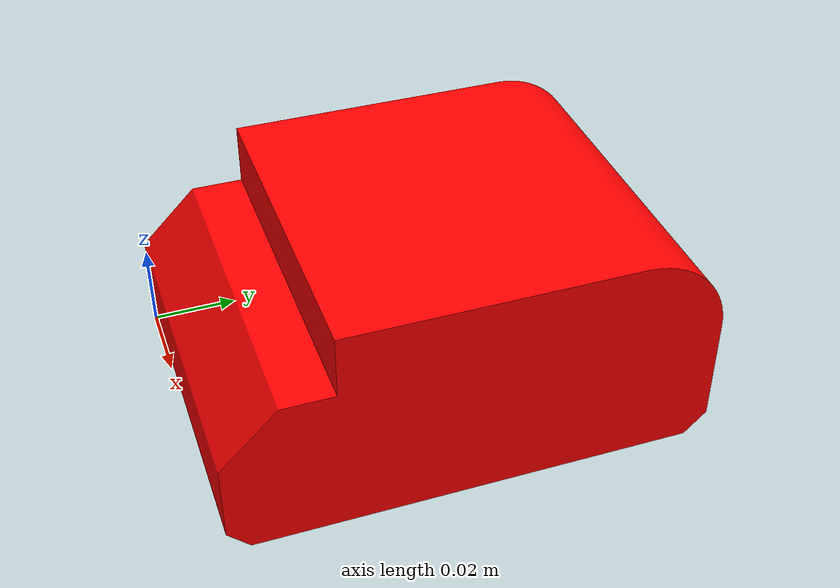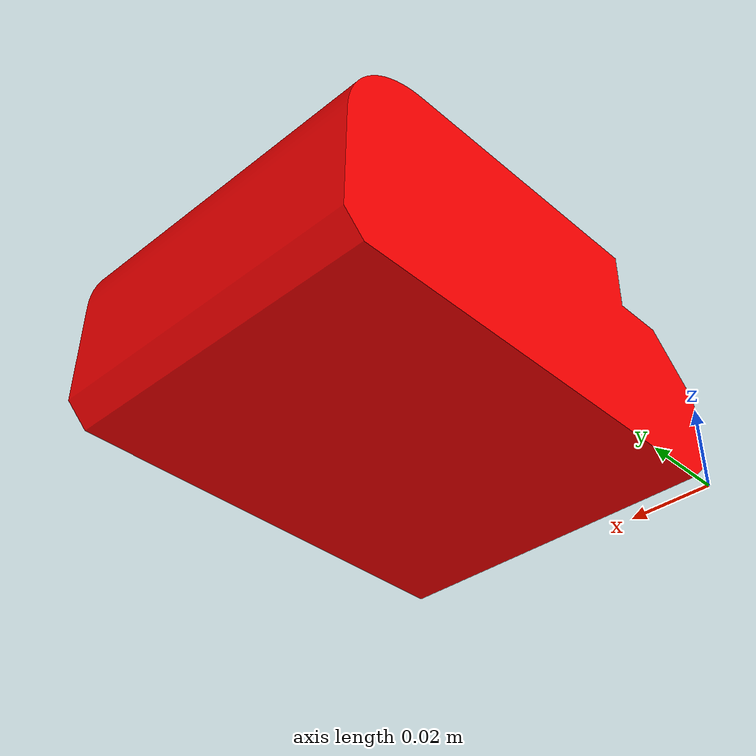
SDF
<?xml version="1.0" ?>
<sdf version="1.8">
  <model name="battery">
    <static>true</static>
    <pose>0 0 0 0 0 0</pose>

    <link name="battery">

      <!-- VISUAL -->
      <visual name="battery_visual">
        <geometry>
          <mesh>
            <uri>model://battery/meshes/Bosch_Battery.stl</uri>
            <scale>0.001 0.001 0.001</scale>
          </mesh>
        </geometry>

        <material>
          <ambient>1 0 0 1</ambient>
          <diffuse>1 0 0 1</diffuse>
          <specular>0.3 0.3 0.3 1</specular>
          <emissive>0.1 0 0 1</emissive>
        </material>
      </visual>

      <!-- COLLISION -->
      <collision name="battery_collision">
        <pose>0 0 0.025 0 0 0</pose> <!-- half height -->
        <geometry>
          <box>
            <size>0.105 0.06 0.05</size>
          </box>
        </geometry>
      </collision>

    </link>
  </model>
</sdf>
